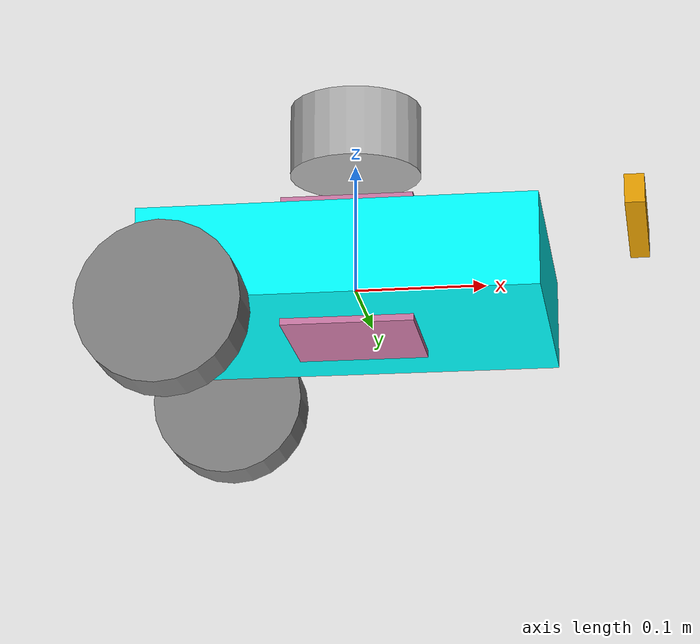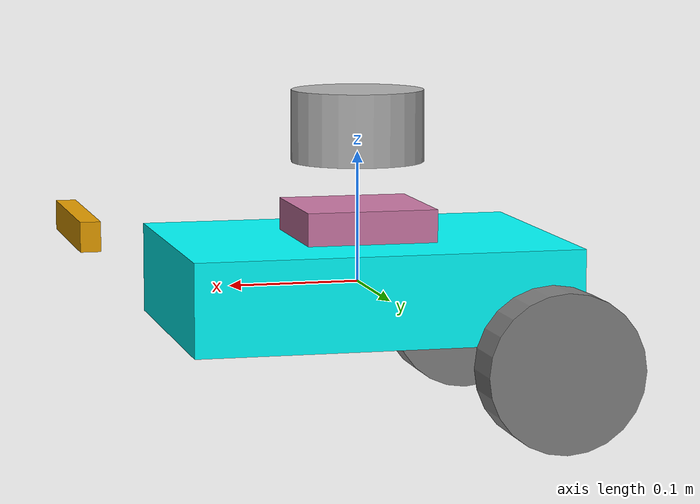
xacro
<?xml version="1.0"?>
<robot name="viam"
  xmlns:xacro="http://ros.org/wiki/xacro">

  <!-- Define robot constants -->
  <xacro:property name="base_width" value="0.22"/>
  <xacro:property name="base_length" value="0.295"/>
  <xacro:property name="base_height" value="0.07"/>

  <xacro:property name="wheel_radius" value="0.06"/>
  <xacro:property name="wheel_width" value="0.04"/>
  <xacro:property name="wheel_ygap" value="0.025"/>
  <xacro:property name="wheel_zoff" value="0.05"/>
  <xacro:property name="wheel_xoff" value="0.12"/>

  <xacro:property name="caster_xoff" value="0.12"/>
  <xacro:property name="caster_yoff" value="0.178"/>

  <!-- Define some commonly used intertial properties  -->
  <xacro:macro name="box_inertia" params="m w h d">
    <inertial>
      <origin xyz="0 0 0" rpy="${pi/2} 0 ${pi/2}"/>
      <mass value="${m}"/>
      <inertia ixx="${(m/12) * (h*h + d*d)}" ixy="0.0" ixz="0.0" iyy="${(m/12) * (w*w + d*d)}" iyz="0.0" izz="${(m/12) * (w*w + h*h)}"/>
    </inertial>
  </xacro:macro>

  <xacro:macro name="cylinder_inertia" params="m r h">
    <inertial>
      <origin xyz="0 0 0" rpy="${pi/2} 0 0" />
      <mass value="${m}"/>
      <inertia ixx="${(m/12) * (3*r*r + h*h)}" ixy = "0" ixz = "0" iyy="${(m/12) * (3*r*r + h*h)}" iyz = "0" izz="${(m/2) * (r*r)}"/>
    </inertial>
  </xacro:macro>

  <xacro:macro name="sphere_inertia" params="m r">
    <inertial>
      <mass value="${m}"/>
      <inertia ixx="${(2/5) * m * (r*r)}" ixy="0.0" ixz="0.0" iyy="${(2/5) * m * (r*r)}" iyz="0.0" izz="${(2/5) * m * (r*r)}"/>
    </inertial>
  </xacro:macro>

  <!-- Robot Base -->
  <link name="base_link">
    <visual>
      <geometry>
        <box size="${base_length} ${base_width} ${base_height}"/>
      </geometry>
      <material name="Cyan">
        <color rgba="0 1.0 1.0 1.0"/>
      </material>
    </visual>

    <collision>
      <geometry>
        <box size="${base_length} ${base_width} ${base_height}"/>
      </geometry>
    </collision>
  </link>

  <!-- Robot Footprint -->
  <link name="base_footprint">
    <xacro:box_inertia m="15" w="${base_width}" d="${base_length}" h="${base_height}"/>
  </link>

  <joint name="base_joint" type="fixed">
    <parent link="base_link"/>
    <child link="base_footprint"/>
    <origin xyz="0.0 0.0 ${-(wheel_radius+wheel_zoff)}" rpy="0 0 0"/>
  </joint>

  <!-- Wheels -->
  <xacro:macro name="wheel" params="prefix x_reflect y_reflect">
    <link name="${prefix}_link">
      <visual>
        <origin xyz="0 0 0" rpy="${pi/2} 0 0"/>
        <geometry>
          <cylinder radius="${wheel_radius}" length="${wheel_width}"/>
        </geometry>
        <material name="Gray">
          <color rgba="0.5 0.5 0.5 1.0"/>
        </material>
      </visual>

      <collision>
        <origin xyz="0 0 0" rpy="${pi/2} 0 0"/>
        <geometry>
          <cylinder radius="${wheel_radius}" length="${wheel_width}"/>
        </geometry>
      </collision>

      <xacro:cylinder_inertia m="0.5" r="${wheel_radius}" h="${wheel_width}"/>
    </link>

    <joint name="${prefix}_joint" type="continuous">
      <parent link="base_link"/>
      <child link="${prefix}_link"/>
      <origin xyz="${x_reflect*wheel_xoff} ${y_reflect*(base_width/2+wheel_ygap)} ${-wheel_zoff}" rpy="0 0 0"/>
      <axis xyz="0 1 0"/>
    </joint>
  </xacro:macro>

  <xacro:wheel prefix="drivewhl_l" x_reflect="-1" y_reflect="1" />
  <xacro:wheel prefix="drivewhl_r" x_reflect="-1" y_reflect="-1" />

  <!-- Casters -->
  <xacro:macro name="caster" params="prefix x_reflect y_reflect">
    <link name="${prefix}_link">
      <visual>
        <geometry>
            <sphere radius="${(wheel_radius+wheel_zoff-(base_height/2))}"/>
        </geometry>
        <material name="Cyan">
            <color rgba="0 1.0 1.0 1.0"/>
        </material>
      </visual>

      <collision>
        <origin xyz="0 0 0" rpy="0 0 0"/>
        <geometry>
            <sphere radius="${(wheel_radius+wheel_zoff-(base_height/2))}"/>
        </geometry>
      </collision>

      <xacro:sphere_inertia m="0.5" r="${(wheel_radius+wheel_zoff-(base_height/2))}"/>
    </link>

    <joint name="${prefix}_joint" type="fixed">
        <parent link="base_link"/>
        <child link="${prefix}_joint"/>
        <origin xyz="${caster_xoff} 0.0 ${-(base_height/2)}" rpy="0 0 0"/>
    </joint>

  </xacro:macro>

  <xacro:wheel prefix="caster_l" x_reflect="-1" y_reflect="1" />
  <xacro:wheel prefix="caster_r" x_reflect="-1" y_reflect="-1" />

  <link name="imu_link">
    <visual>
      <geometry>
        <box size="0.1 0.1 0.1"/>
      </geometry>
    </visual>

    <collision>
      <geometry>
        <box size="0.1 0.1 0.1"/>
      </geometry>
    </collision>

    <xacro:box_inertia m="0.1" w="0.1" d="0.1" h="0.1"/>
  </link>

  <joint name="imu_joint" type="fixed">
    <parent link="base_link"/>
    <child link="imu_link"/>
    <origin xyz="0 0 0.01"/>
  </joint>

  <link name="lidar_link">
    <inertial>
      <origin xyz="0 0 0" rpy="0 0 0"/>
      <mass value="0.125"/>
      <inertia ixx="0.001" ixy="0" ixz="0" iyy="0.001" iyz="0" izz="0.001" />
    </inertial>

    <collision>
      <origin xyz="0 0 0" rpy="0 0 0"/>
      <geometry>
        <cylinder radius="0.0508" length="0.055"/>
      </geometry>
    </collision>

    <visual>
      <origin xyz="0 0 0" rpy="0 0 0"/>
      <geometry>
        <cylinder radius="0.0508" length="0.055"/>
      </geometry>
    </visual>
  </link>

  <joint name="lidar_joint" type="fixed">
    <parent link="base_link"/>
    <child link="lidar_link"/>
    <origin xyz="0 0 0.12" rpy="0 0 0"/>
  </joint>

  <link name="camera_link">
    <visual>
      <origin xyz="0 0 0" rpy="0 0 0"/>
      <geometry>
        <box size="0.015 0.130 0.022"/>
      </geometry>
    </visual>

    <collision>
      <origin xyz="0 0 0" rpy="0 0 0"/>
      <geometry>
        <box size="0.015 0.130 0.022"/>
      </geometry>
    </collision>

    <inertial>
      <origin xyz="0 0 0" rpy="0 0 0"/>
      <mass value="0.035"/>
      <inertia ixx="0.001" ixy="0" ixz="0" iyy="0.001" iyz="0" izz="0.001" />
    </inertial>
  </link>

  <joint name="camera_joint" type="fixed">
    <parent link="base_link"/>
    <child link="camera_link"/>
    <origin xyz="0.215 0 0.05" rpy="0 0 0"/>
  </joint>
</robot>
